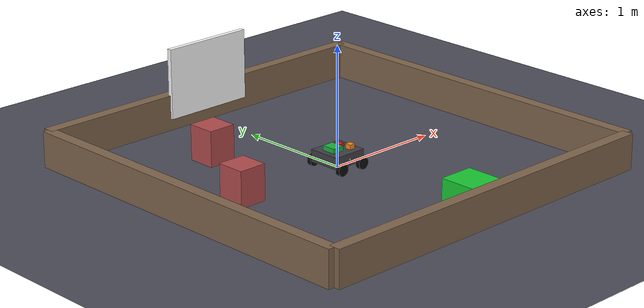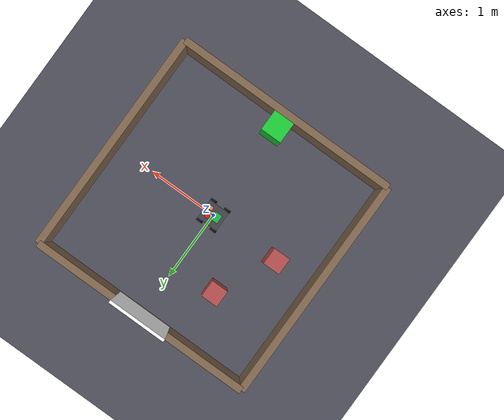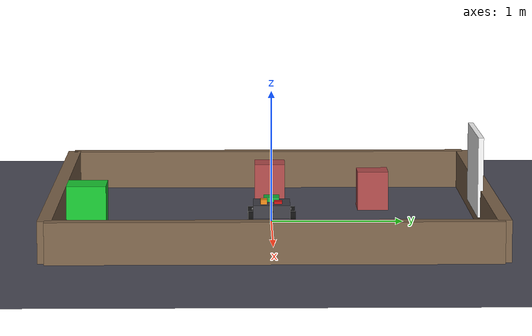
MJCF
<mujoco model="perceptbot">
  <compiler angle="radian"/>
  <option timestep="0.005"/>

  <default>
    <geom rgba="0.6 0.6 0.6 1"/>
  </default>

  <worldbody>
    <light pos="0 0 3" dir="0 0 -1" diffuse="0.9 0.9 0.9"/>
    <!-- extra light over the white panel so behaviour 4 has a real bright spot -->
    <light pos="0 1.4 1.2" dir="0 -0.5 -1" diffuse="1 1 1"/>
    <geom name="ground" type="plane" size="3 3 0.1" rgba="0.3 0.3 0.35 1"/>

    <!-- ===== arena walls ===== -->
    <geom name="wall_n" type="box" size="1.6 0.05 0.15" pos="0  1.6 0.15" rgba="0.5 0.4 0.3 1"/>
    <geom name="wall_s" type="box" size="1.6 0.05 0.15" pos="0 -1.6 0.15" rgba="0.5 0.4 0.3 1"/>
    <geom name="wall_e" type="box" size="0.05 1.6 0.15" pos="1.6 0 0.15" rgba="0.5 0.4 0.3 1"/>
    <geom name="wall_w" type="box" size="0.05 1.6 0.15" pos="-1.6 0 0.15" rgba="0.5 0.4 0.3 1"/>

    <!-- ===== vision targets ===== -->
    <!-- B4 light-seek: bright white panel on +Y wall -->
    <geom name="light_panel" type="box" size="0.4 0.02 0.3" pos="0 1.55 0.4" rgba="1 1 1 1"/>
    <!-- B5 colour-seek: green box on -Y wall -->
    <geom name="green_box" type="box" size="0.15 0.15 0.15" pos="0 -1.4 0.15" rgba="0.1 0.8 0.2 1"/>

    <!-- ===== pillars for obstacle behaviours 1-3 ===== -->
    <geom name="pillar_1" type="box" size="0.12 0.12 0.15" pos="-1.0 0.0 0.15" rgba="0.7 0.3 0.3 1"/>
    <geom name="pillar_2" type="box" size="0.12 0.12 0.15" pos="-0.6 0.8 0.15" rgba="0.7 0.3 0.3 1"/>

    <!-- ===== robot (planar kinematic base at z=0.10) ===== -->
    <body name="base_link" pos="0 0 0.10">
      <joint name="slide_x" type="slide" axis="1 0 0"/>
      <joint name="slide_y" type="slide" axis="0 1 0"/>
      <joint name="yaw" type="hinge" axis="0 0 1"/>
      <geom type="box" size="0.15 0.14 0.05" rgba="0.25 0.25 0.28 1"/>

      <!-- === CHECKPOINT: camera ===  front camera, looks along robot +x -->
      <camera name="cam" pos="0.15 0 0.04" xyaxes="0 -1 0 0 0 1" fovy="60"/>
      <!-- === END CHECKPOINT: camera === -->

      <!-- wheels (visual; hinge joints spun by the driver) -->
      <body name="wheel_fl" pos="0.11 0.16 -0.05">
        <joint name="wheel_fl_joint" type="hinge" axis="0 1 0"/>
        <geom type="cylinder" size="0.05 0.02" euler="1.5708 0 0" rgba="0.05 0.05 0.05 1"/>
      </body>
      <body name="wheel_fr" pos="0.11 -0.16 -0.05">
        <joint name="wheel_fr_joint" type="hinge" axis="0 1 0"/>
        <geom type="cylinder" size="0.05 0.02" euler="1.5708 0 0" rgba="0.05 0.05 0.05 1"/>
      </body>
      <body name="wheel_rl" pos="-0.11 0.16 -0.05">
        <joint name="wheel_rl_joint" type="hinge" axis="0 1 0"/>
        <geom type="cylinder" size="0.05 0.02" euler="1.5708 0 0" rgba="0.05 0.05 0.05 1"/>
      </body>
      <body name="wheel_rr" pos="-0.11 -0.16 -0.05">
        <joint name="wheel_rr_joint" type="hinge" axis="0 1 0"/>
        <geom type="cylinder" size="0.05 0.02" euler="1.5708 0 0" rgba="0.05 0.05 0.05 1"/>
      </body>

      <!-- labelled parts -->
      <geom type="box" size="0.05 0.06 0.02" pos="-0.05 0    0.07" rgba="0.1 0.7 0.25 1"/>
      <geom type="box" size="0.03 0.03 0.01" pos="0.06  0.05 0.06" rgba="0.85 0.1 0.1 1"/>
      <geom type="box" size="0.025 0.025 0.02" pos="0.08 -0.06 0.07" rgba="0.95 0.55 0.1 1"/>

      <!-- ultrasonic sites: ray casts along site +z (front=+x, left=+y, right=-y) -->
      <site name="us_front" pos="0.15 0    0" euler="0 1.5708 0" size="0.01"/>
      <site name="us_left"  pos="0    0.14 0" euler="-1.5708 0 0" size="0.01"/>
      <site name="us_right" pos="0   -0.14 0" euler="1.5708 0 0" size="0.01"/>
    </body>
  </worldbody>

  <sensor>
    <rangefinder name="rf_front" site="us_front"/>
    <rangefinder name="rf_left"  site="us_left"/>
    <rangefinder name="rf_right" site="us_right"/>
  </sensor>
</mujoco>
